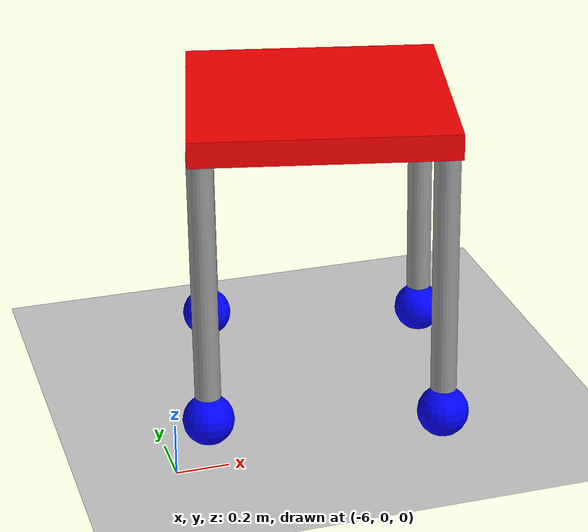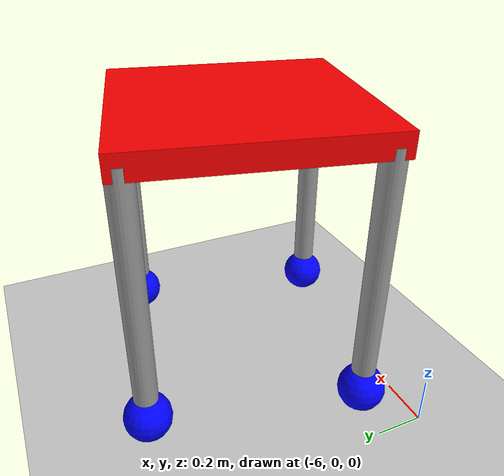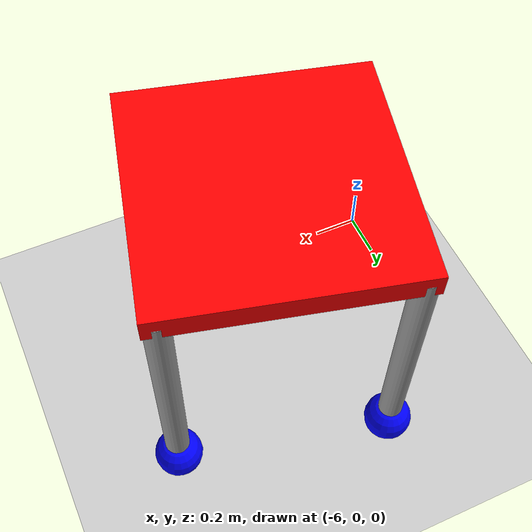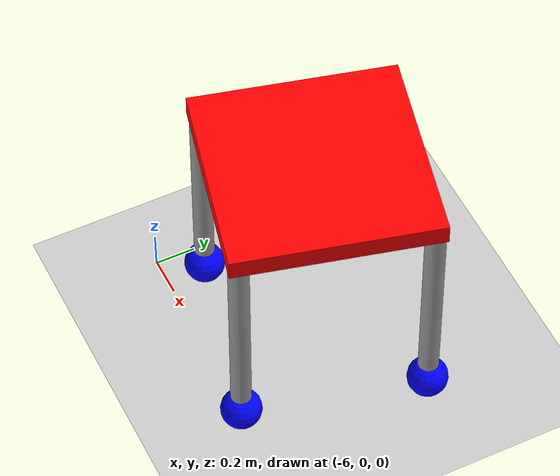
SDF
<sdf version="1.6">
 <world name="default">
  <model name="ground_plane">
   <static>1</static>
   <link name="link">
    <collision name="collision">
     <geometry><plane><normal>0 0 1</normal><size>100 100</size></plane></geometry>
     <surface><friction><ode><mu>100</mu><mu2>50</mu2></ode></friction></surface>
    </collision>
    <visual name="visual">
     <cast_shadows>0</cast_shadows>
     <geometry><plane><normal>0 0 1</normal><size>100 100</size></plane></geometry>
     <material>
      <script><uri>file://media/materials/scripts/gazebo.material</uri><name>Gazebo/Grey</name></script>
     </material>
    </visual>
   </link>
  </model>
  <model name="Robo_Model_3_clone">
   <link name="link_0">
    <pose>-0.003409 0.00263 0.716269 0 -0 0</pose>
    <inertial>
     <mass>1</mass>
     <inertia>
      <ixx>0.166667</ixx>
      <ixy>0</ixy>
      <ixz>0</ixz>
      <iyy>0.166667</iyy>
      <iyz>0</iyz>
      <izz>0.166667</izz>
     </inertia>
    </inertial>
    <visual name="visual">
     <geometry><box><size>1 1 0.1</size></box></geometry>
     <material>
      <lighting>1</lighting>
      <script><uri>file://media/materials/scripts/gazebo.material</uri><name>Gazebo/Grey</name></script>
      <shader type="pixel"><normal_map>__default__</normal_map></shader>
      <ambient>1 0 0 1</ambient>
      <diffuse>0.7 0.7 0.7 1</diffuse>
      <specular>0.01 0.01 0.01 1</specular>
      <emissive>0 0 0 1</emissive>
     </material>
    </visual>
    <collision name="collision">
     <geometry><box><size>1 1 0.1</size></box></geometry>
     <surface>
      <friction>
       <ode><mu>1</mu><mu2>1</mu2><fdir1>0 0 0</fdir1><slip1>0</slip1><slip2>0</slip2></ode>
       <torsional>
        <coefficient>1</coefficient>
        <patch_radius>0</patch_radius>
        <surface_radius>0</surface_radius>
        <use_patch_radius>1</use_patch_radius>
        <ode><slip>0</slip></ode>
       </torsional>
      </friction>
      <bounce><restitution_coefficient>0</restitution_coefficient><threshold>1e+06</threshold></bounce>
      <contact>
       <collide_without_contact>0</collide_without_contact>
       <collide_without_contact_bitmask>1</collide_without_contact_bitmask>
       <collide_bitmask>1</collide_bitmask>
       <ode>
        <soft_cfm>0</soft_cfm>
        <soft_erp>0.2</soft_erp>
        <kp>1e+13</kp>
        <kd>1</kd>
        <max_vel>0.01</max_vel>
        <min_depth>0</min_depth>
       </ode>
       <bullet>
        <split_impulse>1</split_impulse>
        <split_impulse_penetration_threshold>-0.01</split_impulse_penetration_threshold>
        <soft_cfm>0</soft_cfm>
        <soft_erp>0.2</soft_erp>
        <kp>1e+13</kp>
        <kd>1</kd>
       </bullet>
      </contact>
     </surface>
    </collision>
   </link>
   <link name="link_1">
    <pose>0.450427 -0.450329 0.216269 0 -0 0</pose>
    <inertial>
     <mass>1</mass>
     <inertia><ixx>0.145833</ixx><ixy>0</ixy><ixz>0</ixz><iyy>0.145833</iyy><iyz>0</iyz><izz>0.125</izz></inertia>
    </inertial>
    <visual name="visual">
     <geometry><cylinder><radius>0.05</radius><length>1</length></cylinder></geometry>
     <material>
      <lighting>1</lighting>
      <script><uri>file://media/materials/scripts/gazebo.material</uri><name>Gazebo/Grey</name></script>
      <shader type="pixel"><normal_map>__default__</normal_map></shader>
      <ambient>0.3 0.3 0.3 1</ambient>
      <diffuse>0.7 0.7 0.7 1</diffuse>
      <specular>0.01 0.01 0.01 1</specular>
      <emissive>0 0 0 1</emissive>
     </material>
    </visual>
    <collision name="collision">
     <geometry><cylinder><radius>0.05</radius><length>1</length></cylinder></geometry>
     <surface>
      <friction>
       <ode><mu>1</mu><mu2>1</mu2><fdir1>0 0 0</fdir1><slip1>0</slip1><slip2>0</slip2></ode>
       <torsional>
        <coefficient>1</coefficient>
        <patch_radius>0</patch_radius>
        <surface_radius>0</surface_radius>
        <use_patch_radius>1</use_patch_radius>
        <ode><slip>0</slip></ode>
       </torsional>
      </friction>
      <bounce><restitution_coefficient>0</restitution_coefficient><threshold>1e+06</threshold></bounce>
      <contact>
       <collide_without_contact>0</collide_without_contact>
       <collide_without_contact_bitmask>1</collide_without_contact_bitmask>
       <collide_bitmask>1</collide_bitmask>
       <ode>
        <soft_cfm>0</soft_cfm>
        <soft_erp>0.2</soft_erp>
        <kp>1e+13</kp>
        <kd>1</kd>
        <max_vel>0.01</max_vel>
        <min_depth>0</min_depth>
       </ode>
       <bullet>
        <split_impulse>1</split_impulse>
        <split_impulse_penetration_threshold>-0.01</split_impulse_penetration_threshold>
        <soft_cfm>0</soft_cfm>
        <soft_erp>0.2</soft_erp>
        <kp>1e+13</kp>
        <kd>1</kd>
       </bullet>
      </contact>
     </surface>
    </collision>
   </link>
   <link name="link_1_clone">
    <pose>-0.449573 -0.450329 0.208531 0 -0 0</pose>
    <inertial>
     <mass>1</mass>
     <inertia><ixx>0.145833</ixx><ixy>0</ixy><ixz>0</ixz><iyy>0.145833</iyy><iyz>0</iyz><izz>0.125</izz></inertia>
    </inertial>
    <visual name="visual">
     <geometry><cylinder><radius>0.05</radius><length>1</length></cylinder></geometry>
     <material>
      <lighting>1</lighting>
      <script><uri>file://media/materials/scripts/gazebo.material</uri><name>Gazebo/Grey</name></script>
      <shader type="pixel"><normal_map>__default__</normal_map></shader>
      <ambient>0.3 0.3 0.3 1</ambient>
      <diffuse>0.7 0.7 0.7 1</diffuse>
      <specular>0.01 0.01 0.01 1</specular>
      <emissive>0 0 0 1</emissive>
     </material>
    </visual>
    <collision name="collision">
     <geometry><cylinder><radius>0.05</radius><length>1</length></cylinder></geometry>
     <surface>
      <friction>
       <ode><mu>1</mu><mu2>1</mu2><fdir1>0 0 0</fdir1><slip1>0</slip1><slip2>0</slip2></ode>
       <torsional>
        <coefficient>1</coefficient>
        <patch_radius>0</patch_radius>
        <surface_radius>0</surface_radius>
        <use_patch_radius>1</use_patch_radius>
        <ode><slip>0</slip></ode>
       </torsional>
      </friction>
      <bounce><restitution_coefficient>0</restitution_coefficient><threshold>1e+06</threshold></bounce>
      <contact>
       <collide_without_contact>0</collide_without_contact>
       <collide_without_contact_bitmask>1</collide_without_contact_bitmask>
       <collide_bitmask>1</collide_bitmask>
       <ode>
        <soft_cfm>0</soft_cfm>
        <soft_erp>0.2</soft_erp>
        <kp>1e+13</kp>
        <kd>1</kd>
        <max_vel>0.01</max_vel>
        <min_depth>0</min_depth>
       </ode>
       <bullet>
        <split_impulse>1</split_impulse>
        <split_impulse_penetration_threshold>-0.01</split_impulse_penetration_threshold>
        <soft_cfm>0</soft_cfm>
        <soft_erp>0.2</soft_erp>
        <kp>1e+13</kp>
        <kd>1</kd>
       </bullet>
      </contact>
     </surface>
    </collision>
   </link>
   <link name="link_1_clone_clone">
    <pose>-0.449573 0.449671 0.208532 0 -0 0</pose>
    <inertial>
     <mass>1</mass>
     <inertia><ixx>0.145833</ixx><ixy>0</ixy><ixz>0</ixz><iyy>0.145833</iyy><iyz>0</iyz><izz>0.125</izz></inertia>
    </inertial>
    <visual name="visual">
     <geometry><cylinder><radius>0.05</radius><length>1</length></cylinder></geometry>
     <material>
      <lighting>1</lighting>
      <script><uri>file://media/materials/scripts/gazebo.material</uri><name>Gazebo/Grey</name></script>
      <shader type="pixel"><normal_map>__default__</normal_map></shader>
      <ambient>0.3 0.3 0.3 1</ambient>
      <diffuse>0.7 0.7 0.7 1</diffuse>
      <specular>0.01 0.01 0.01 1</specular>
      <emissive>0 0 0 1</emissive>
     </material>
    </visual>
    <collision name="collision">
     <geometry><cylinder><radius>0.05</radius><length>1</length></cylinder></geometry>
     <surface>
      <friction>
       <ode><mu>1</mu><mu2>1</mu2><fdir1>0 0 0</fdir1><slip1>0</slip1><slip2>0</slip2></ode>
       <torsional>
        <coefficient>1</coefficient>
        <patch_radius>0</patch_radius>
        <surface_radius>0</surface_radius>
        <use_patch_radius>1</use_patch_radius>
        <ode><slip>0</slip></ode>
       </torsional>
      </friction>
      <bounce><restitution_coefficient>0</restitution_coefficient><threshold>1e+06</threshold></bounce>
      <contact>
       <collide_without_contact>0</collide_without_contact>
       <collide_without_contact_bitmask>1</collide_without_contact_bitmask>
       <collide_bitmask>1</collide_bitmask>
       <ode>
        <soft_cfm>0</soft_cfm>
        <soft_erp>0.2</soft_erp>
        <kp>1e+13</kp>
        <kd>1</kd>
        <max_vel>0.01</max_vel>
        <min_depth>0</min_depth>
       </ode>
       <bullet>
        <split_impulse>1</split_impulse>
        <split_impulse_penetration_threshold>-0.01</split_impulse_penetration_threshold>
        <soft_cfm>0</soft_cfm>
        <soft_erp>0.2</soft_erp>
        <kp>1e+13</kp>
        <kd>1</kd>
       </bullet>
      </contact>
     </surface>
    </collision>
   </link>
   <link name="link_1_clone_clone_clone">
    <pose>0.450427 0.449671 0.208532 0 -0 0</pose>
    <inertial>
     <mass>1</mass>
     <inertia><ixx>0.145833</ixx><ixy>0</ixy><ixz>0</ixz><iyy>0.145833</iyy><iyz>0</iyz><izz>0.125</izz></inertia>
    </inertial>
    <visual name="visual">
     <geometry><cylinder><radius>0.05</radius><length>1</length></cylinder></geometry>
     <material>
      <lighting>1</lighting>
      <script><uri>file://media/materials/scripts/gazebo.material</uri><name>Gazebo/Grey</name></script>
      <shader type="pixel"><normal_map>__default__</normal_map></shader>
      <ambient>0.3 0.3 0.3 1</ambient>
      <diffuse>0.7 0.7 0.7 1</diffuse>
      <specular>0.01 0.01 0.01 1</specular>
      <emissive>0 0 0 1</emissive>
     </material>
    </visual>
    <collision name="collision">
     <geometry><cylinder><radius>0.05</radius><length>1</length></cylinder></geometry>
     <surface>
      <friction>
       <ode><mu>1</mu><mu2>1</mu2><fdir1>0 0 0</fdir1><slip1>0</slip1><slip2>0</slip2></ode>
       <torsional>
        <coefficient>1</coefficient>
        <patch_radius>0</patch_radius>
        <surface_radius>0</surface_radius>
        <use_patch_radius>1</use_patch_radius>
        <ode><slip>0</slip></ode>
       </torsional>
      </friction>
      <bounce><restitution_coefficient>0</restitution_coefficient><threshold>1e+06</threshold></bounce>
      <contact>
       <collide_without_contact>0</collide_without_contact>
       <collide_without_contact_bitmask>1</collide_without_contact_bitmask>
       <collide_bitmask>1</collide_bitmask>
       <ode>
        <soft_cfm>0</soft_cfm>
        <soft_erp>0.2</soft_erp>
        <kp>1e+13</kp>
        <kd>1</kd>
        <max_vel>0.01</max_vel>
        <min_depth>0</min_depth>
       </ode>
       <bullet>
        <split_impulse>1</split_impulse>
        <split_impulse_penetration_threshold>-0.01</split_impulse_penetration_threshold>
        <soft_cfm>0</soft_cfm>
        <soft_erp>0.2</soft_erp>
        <kp>1e+13</kp>
        <kd>1</kd>
       </bullet>
      </contact>
     </surface>
    </collision>
   </link>
   <link name="link_2">
    <pose>0.450427 -0.450329 -0.383731 0 -0 0</pose>
    <inertial>
     <mass>1</mass>
     <inertia><ixx>0.1</ixx><ixy>0</ixy><ixz>0</ixz><iyy>0.1</iyy><iyz>0</iyz><izz>0.1</izz></inertia>
    </inertial>
    <visual name="visual">
     <geometry><sphere><radius>0.1</radius></sphere></geometry>
     <material>
      <lighting>1</lighting>
      <script><uri>file://media/materials/scripts/gazebo.material</uri><name>Gazebo/Grey</name></script>
      <shader type="pixel"><normal_map>__default__</normal_map></shader>
      <ambient>0 0 1 1</ambient>
      <diffuse>0.7 0.7 0.7 1</diffuse>
      <specular>0.01 0.01 0.01 1</specular>
      <emissive>0 0 0 1</emissive>
     </material>
    </visual>
    <collision name="collision">
     <geometry><sphere><radius>0.1</radius></sphere></geometry>
     <surface>
      <friction>
       <ode><mu>1</mu><mu2>1</mu2><fdir1>0 0 0</fdir1><slip1>0</slip1><slip2>0</slip2></ode>
       <torsional>
        <coefficient>1</coefficient>
        <patch_radius>0</patch_radius>
        <surface_radius>0</surface_radius>
        <use_patch_radius>1</use_patch_radius>
        <ode><slip>0</slip></ode>
       </torsional>
      </friction>
      <bounce><restitution_coefficient>0</restitution_coefficient><threshold>1e+06</threshold></bounce>
      <contact>
       <collide_without_contact>0</collide_without_contact>
       <collide_without_contact_bitmask>1</collide_without_contact_bitmask>
       <collide_bitmask>1</collide_bitmask>
       <ode>
        <soft_cfm>0</soft_cfm>
        <soft_erp>0.2</soft_erp>
        <kp>1e+13</kp>
        <kd>1</kd>
        <max_vel>0.01</max_vel>
        <min_depth>0</min_depth>
       </ode>
       <bullet>
        <split_impulse>1</split_impulse>
        <split_impulse_penetration_threshold>-0.01</split_impulse_penetration_threshold>
        <soft_cfm>0</soft_cfm>
        <soft_erp>0.2</soft_erp>
        <kp>1e+13</kp>
        <kd>1</kd>
       </bullet>
      </contact>
     </surface>
    </collision>
   </link>
   <link name="link_2_clone">
    <pose>0.450427 0.449671 -0.391468 0 -0 0</pose>
    <inertial>
     <mass>1</mass>
     <inertia><ixx>0.1</ixx><ixy>0</ixy><ixz>0</ixz><iyy>0.1</iyy><iyz>0</iyz><izz>0.1</izz></inertia>
    </inertial>
    <visual name="visual">
     <geometry><sphere><radius>0.1</radius></sphere></geometry>
     <material>
      <lighting>1</lighting>
      <script><uri>file://media/materials/scripts/gazebo.material</uri><name>Gazebo/Grey</name></script>
      <shader type="pixel"><normal_map>__default__</normal_map></shader>
      <ambient>0 0 1 1</ambient>
      <diffuse>0.7 0.7 0.7 1</diffuse>
      <specular>0.01 0.01 0.01 1</specular>
      <emissive>0 0 0 1</emissive>
     </material>
    </visual>
    <collision name="collision">
     <geometry><sphere><radius>0.1</radius></sphere></geometry>
     <surface>
      <friction>
       <ode><mu>1</mu><mu2>1</mu2><fdir1>0 0 0</fdir1><slip1>0</slip1><slip2>0</slip2></ode>
       <torsional>
        <coefficient>1</coefficient>
        <patch_radius>0</patch_radius>
        <surface_radius>0</surface_radius>
        <use_patch_radius>1</use_patch_radius>
        <ode><slip>0</slip></ode>
       </torsional>
      </friction>
      <bounce><restitution_coefficient>0</restitution_coefficient><threshold>1e+06</threshold></bounce>
      <contact>
       <collide_without_contact>0</collide_without_contact>
       <collide_without_contact_bitmask>1</collide_without_contact_bitmask>
       <collide_bitmask>1</collide_bitmask>
       <ode>
        <soft_cfm>0</soft_cfm>
        <soft_erp>0.2</soft_erp>
        <kp>1e+13</kp>
        <kd>1</kd>
        <max_vel>0.01</max_vel>
        <min_depth>0</min_depth>
       </ode>
       <bullet>
        <split_impulse>1</split_impulse>
        <split_impulse_penetration_threshold>-0.01</split_impulse_penetration_threshold>
        <soft_cfm>0</soft_cfm>
        <soft_erp>0.2</soft_erp>
        <kp>1e+13</kp>
        <kd>1</kd>
       </bullet>
      </contact>
     </surface>
    </collision>
   </link>
   <link name="link_2_clone_clone">
    <pose>-0.449573 0.449671 -0.391468 0 -0 0</pose>
    <inertial>
     <mass>1</mass>
     <inertia><ixx>0.1</ixx><ixy>0</ixy><ixz>0</ixz><iyy>0.1</iyy><iyz>0</iyz><izz>0.1</izz></inertia>
    </inertial>
    <visual name="visual">
     <geometry><sphere><radius>0.1</radius></sphere></geometry>
     <material>
      <lighting>1</lighting>
      <script><uri>file://media/materials/scripts/gazebo.material</uri><name>Gazebo/Grey</name></script>
      <shader type="pixel"><normal_map>__default__</normal_map></shader>
      <ambient>0 0 1 1</ambient>
      <diffuse>0.7 0.7 0.7 1</diffuse>
      <specular>0.01 0.01 0.01 1</specular>
      <emissive>0 0 0 1</emissive>
     </material>
    </visual>
    <collision name="collision">
     <geometry><sphere><radius>0.1</radius></sphere></geometry>
     <surface>
      <friction>
       <ode><mu>1</mu><mu2>1</mu2><fdir1>0 0 0</fdir1><slip1>0</slip1><slip2>0</slip2></ode>
       <torsional>
        <coefficient>1</coefficient>
        <patch_radius>0</patch_radius>
        <surface_radius>0</surface_radius>
        <use_patch_radius>1</use_patch_radius>
        <ode><slip>0</slip></ode>
       </torsional>
      </friction>
      <bounce><restitution_coefficient>0</restitution_coefficient><threshold>1e+06</threshold></bounce>
      <contact>
       <collide_without_contact>0</collide_without_contact>
       <collide_without_contact_bitmask>1</collide_without_contact_bitmask>
       <collide_bitmask>1</collide_bitmask>
       <ode>
        <soft_cfm>0</soft_cfm>
        <soft_erp>0.2</soft_erp>
        <kp>1e+13</kp>
        <kd>1</kd>
        <max_vel>0.01</max_vel>
        <min_depth>0</min_depth>
       </ode>
       <bullet>
        <split_impulse>1</split_impulse>
        <split_impulse_penetration_threshold>-0.01</split_impulse_penetration_threshold>
        <soft_cfm>0</soft_cfm>
        <soft_erp>0.2</soft_erp>
        <kp>1e+13</kp>
        <kd>1</kd>
       </bullet>
      </contact>
     </surface>
    </collision>
   </link>
   <link name="link_2_clone_clone_clone">
    <pose>-0.449573 -0.450329 -0.391469 0 -0 0</pose>
    <inertial>
     <mass>1</mass>
     <inertia><ixx>0.1</ixx><ixy>0</ixy><ixz>0</ixz><iyy>0.1</iyy><iyz>0</iyz><izz>0.1</izz></inertia>
    </inertial>
    <visual name="visual">
     <geometry><sphere><radius>0.1</radius></sphere></geometry>
     <material>
      <lighting>1</lighting>
      <script><uri>file://media/materials/scripts/gazebo.material</uri><name>Gazebo/Grey</name></script>
      <shader type="pixel"><normal_map>__default__</normal_map></shader>
      <ambient>0 0 1 1</ambient>
      <diffuse>0.7 0.7 0.7 1</diffuse>
      <specular>0.01 0.01 0.01 1</specular>
      <emissive>0 0 0 1</emissive>
     </material>
    </visual>
    <collision name="collision">
     <geometry><sphere><radius>0.1</radius></sphere></geometry>
     <surface>
      <friction>
       <ode><mu>1</mu><mu2>1</mu2><fdir1>0 0 0</fdir1><slip1>0</slip1><slip2>0</slip2></ode>
       <torsional>
        <coefficient>1</coefficient>
        <patch_radius>0</patch_radius>
        <surface_radius>0</surface_radius>
        <use_patch_radius>1</use_patch_radius>
        <ode><slip>0</slip></ode>
       </torsional>
      </friction>
      <bounce><restitution_coefficient>0</restitution_coefficient><threshold>1e+06</threshold></bounce>
      <contact>
       <collide_without_contact>0</collide_without_contact>
       <collide_without_contact_bitmask>1</collide_without_contact_bitmask>
       <collide_bitmask>1</collide_bitmask>
       <ode>
        <soft_cfm>0</soft_cfm>
        <soft_erp>0.2</soft_erp>
        <kp>1e+13</kp>
        <kd>1</kd>
        <max_vel>0.01</max_vel>
        <min_depth>0</min_depth>
       </ode>
       <bullet>
        <split_impulse>1</split_impulse>
        <split_impulse_penetration_threshold>-0.01</split_impulse_penetration_threshold>
        <soft_cfm>0</soft_cfm>
        <soft_erp>0.2</soft_erp>
        <kp>1e+13</kp>
        <kd>1</kd>
       </bullet>
      </contact>
     </surface>
    </collision>
   </link>
   <joint name="link_0_JOINT_3" type="fixed">
    <parent>link_0</parent>
    <child>link_1</child>
    <physics>
     <ode><limit><cfm>0</cfm><erp>0.2</erp></limit><suspension><cfm>0</cfm><erp>0.2</erp></suspension></ode>
    </physics>
   </joint>
   <joint name="link_0_JOINT_4" type="fixed">
    <parent>link_0</parent>
    <child>link_1_clone_clone</child>
    <physics>
     <ode><limit><cfm>0</cfm><erp>0.2</erp></limit><suspension><cfm>0</cfm><erp>0.2</erp></suspension></ode>
    </physics>
   </joint>
   <joint name="link_0_JOINT_5" type="fixed">
    <parent>link_0</parent>
    <child>link_1_clone_clone_clone</child>
    <physics>
     <ode><limit><cfm>0</cfm><erp>0.2</erp></limit><suspension><cfm>0</cfm><erp>0.2</erp></suspension></ode>
    </physics>
   </joint>
   <joint name="link_0_JOINT_6" type="fixed">
    <parent>link_0</parent>
    <child>link_1_clone_clone</child>
    <physics>
     <ode><limit><cfm>0</cfm><erp>0.2</erp></limit><suspension><cfm>0</cfm><erp>0.2</erp></suspension></ode>
    </physics>
   </joint>
   <joint name="link_0_JOINT_7" type="fixed">
    <parent>link_0</parent>
    <child>link_1_clone</child>
    <physics>
     <ode><limit><cfm>0</cfm><erp>0.2</erp></limit><suspension><cfm>0</cfm><erp>0.2</erp></suspension></ode>
    </physics>
   </joint>
   <joint name="link_1_JOINT_9" type="revolute2">
    <parent>link_1</parent>
    <child>link_2</child>
    <axis>
     <xyz>1 0 0</xyz>
     <use_parent_model_frame>0</use_parent_model_frame>
     <limit>
      <lower>-1.79769e+308</lower>
      <upper>1.79769e+308</upper>
      <effort>-1</effort>
      <velocity>-1</velocity>
     </limit>
     <dynamics>
      <spring_reference>0</spring_reference>
      <spring_stiffness>0</spring_stiffness>
      <damping>0</damping>
     </dynamics>
    </axis>
    <axis2>
     <xyz>0 1 0</xyz>
     <use_parent_model_frame>0</use_parent_model_frame>
     <dynamics>
      <spring_reference>0</spring_reference>
      <spring_stiffness>0</spring_stiffness>
      <damping>0</damping>
     </dynamics>
     <limit>
      <lower>-1.79769e+308</lower>
      <upper>1.79769e+308</upper>
      <effort>-1</effort>
      <velocity>-1</velocity>
     </limit>
    </axis2>
    <physics>
     <ode><limit><cfm>0</cfm><erp>0.2</erp></limit><suspension><cfm>0</cfm><erp>0.2</erp></suspension></ode>
    </physics>
   </joint>
   <joint name="link_1_clone_JOINT_8" type="revolute2">
    <parent>link_1_clone</parent>
    <child>link_2_clone_clone_clone</child>
    <axis>
     <xyz>1 0 0</xyz>
     <use_parent_model_frame>0</use_parent_model_frame>
     <limit>
      <lower>-1.79769e+308</lower>
      <upper>1.79769e+308</upper>
      <effort>-1</effort>
      <velocity>-1</velocity>
     </limit>
     <dynamics>
      <spring_reference>0</spring_reference>
      <spring_stiffness>0</spring_stiffness>
      <damping>0</damping>
     </dynamics>
    </axis>
    <axis2>
     <xyz>0 1 0</xyz>
     <use_parent_model_frame>0</use_parent_model_frame>
     <dynamics>
      <spring_reference>0</spring_reference>
      <spring_stiffness>0</spring_stiffness>
      <damping>0</damping>
     </dynamics>
     <limit>
      <lower>-1.79769e+308</lower>
      <upper>1.79769e+308</upper>
      <effort>-1</effort>
      <velocity>-1</velocity>
     </limit>
    </axis2>
    <physics>
     <ode><limit><cfm>0</cfm><erp>0.2</erp></limit><suspension><cfm>0</cfm><erp>0.2</erp></suspension></ode>
    </physics>
   </joint>
   <joint name="link_1_clone_clone_JOINT_11" type="revolute2">
    <parent>link_1_clone_clone</parent>
    <child>link_2_clone_clone</child>
    <axis>
     <xyz>1 0 0</xyz>
     <use_parent_model_frame>0</use_parent_model_frame>
     <limit>
      <lower>-1.79769e+308</lower>
      <upper>1.79769e+308</upper>
      <effort>-1</effort>
      <velocity>-1</velocity>
     </limit>
     <dynamics>
      <spring_reference>0</spring_reference>
      <spring_stiffness>0</spring_stiffness>
      <damping>0</damping>
     </dynamics>
    </axis>
    <axis2>
     <xyz>0 1 0</xyz>
     <use_parent_model_frame>0</use_parent_model_frame>
     <dynamics>
      <spring_reference>0</spring_reference>
      <spring_stiffness>0</spring_stiffness>
      <damping>0</damping>
     </dynamics>
     <limit>
      <lower>-1.79769e+308</lower>
      <upper>1.79769e+308</upper>
      <effort>-1</effort>
      <velocity>-1</velocity>
     </limit>
    </axis2>
    <physics>
     <ode><limit><cfm>0</cfm><erp>0.2</erp></limit><suspension><cfm>0</cfm><erp>0.2</erp></suspension></ode>
    </physics>
   </joint>
   <joint name="link_1_clone_clone_clone_JOINT_10" type="revolute2">
    <parent>link_1_clone_clone_clone</parent>
    <child>link_2_clone</child>
    <axis>
     <xyz>1 0 0</xyz>
     <use_parent_model_frame>0</use_parent_model_frame>
     <limit>
      <lower>-1.79769e+308</lower>
      <upper>1.79769e+308</upper>
      <effort>-1</effort>
      <velocity>-1</velocity>
     </limit>
     <dynamics>
      <spring_reference>0</spring_reference>
      <spring_stiffness>0</spring_stiffness>
      <damping>0</damping>
     </dynamics>
    </axis>
    <axis2>
     <xyz>0 1 0</xyz>
     <use_parent_model_frame>0</use_parent_model_frame>
     <dynamics>
      <spring_reference>0</spring_reference>
      <spring_stiffness>0</spring_stiffness>
      <damping>0</damping>
     </dynamics>
     <limit>
      <lower>-1.79769e+308</lower>
      <upper>1.79769e+308</upper>
      <effort>-1</effort>
      <velocity>-1</velocity>
     </limit>
    </axis2>
    <physics>
     <ode><limit><cfm>0</cfm><erp>0.2</erp></limit><suspension><cfm>0</cfm><erp>0.2</erp></suspension></ode>
    </physics>
   </joint>
   <static>0</static>
   <pose>-5.28596 0.516146 0.491444 0.008571 0.008567 2.90055</pose>
  </model>
 </world>
</sdf>
